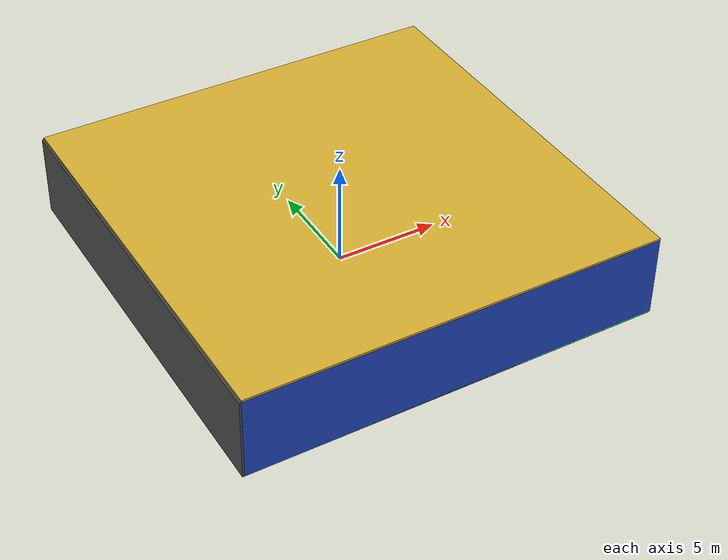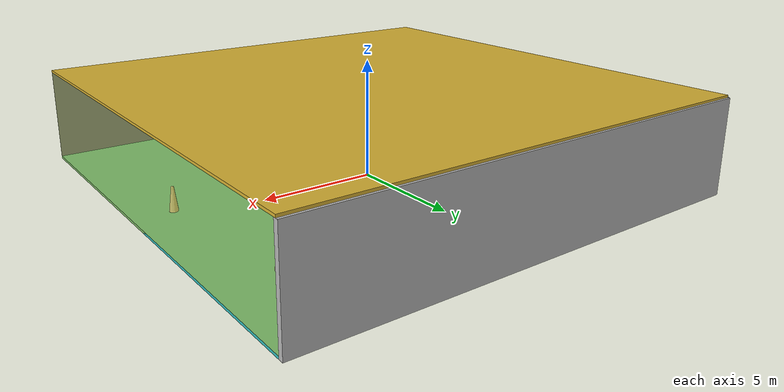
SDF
<sdf version="1.4">
 <world name="default">
  <physics type="ode">
   <max_step_size>0.001</max_step_size>
   <real_time_factor>1</real_time_factor>
   <real_time_update_rate>1000</real_time_update_rate>
   <gravity>0 0 -9.8</gravity>
  </physics>
  <scene><ambient>0.4 0.4 0.4 1</ambient><background>0.7 0.7 0.7 1</background><shadows>1</shadows></scene>
  <model name="Surrounding">
   <static>1</static>
   <link name="Ceiling">
    <collision name="Ceiling_Collision"><geometry><box><size>20 20 0.1</size></box></geometry></collision>
    <visual name="Ceiling_Visual">
     <geometry><box><size>20 20 0.1</size></box></geometry>
     <material>
      <script><uri>file://media/materials/scripts/gazebo.material</uri><name>Gazebo/Gold</name></script>
     </material>
    </visual>
    <pose>0 0 4.05 0 0 0</pose>
   </link>
   <link name="Wall_South">
    <collision name="Wall_South_Collision">
     <geometry><box><size>20 0 4</size></box></geometry>
     <pose>0 0 2 0 -0 0</pose>
    </collision>
    <visual name="Wall_South_Visual">
     <pose>0 0 2 0 -0 0</pose>
     <geometry><box><size>20 0 4</size></box></geometry>
     <material>
      <script><uri>file://media/materials/scripts/gazebo.material</uri><name>Gazebo/BlueLaser</name></script>
     </material>
    </visual>
    <velocity_decay><linear>0</linear><angular>0</angular></velocity_decay>
    <pose>0 -10 0 0 -0 0</pose>
   </link>
   <link name="Wall_East">
    <collision name="Wall_21_Collision">
     <geometry><box><size>20 0 4</size></box></geometry>
     <pose>0 0 2 0 -0 0</pose>
    </collision>
    <visual name="Wall_21_Visual">
     <pose>0 0 2 0 -0 0</pose>
     <geometry><box><size>20 0 4</size></box></geometry>
     <material>
      <script>
       <uri>file://media/materials/scripts/gazebo.material</uri>
       <name>Gazebo/YellowTransparent</name>
      </script>
     </material>
    </visual>
    <velocity_decay><linear>0</linear><angular>0</angular></velocity_decay>
    <pose>10 0 0 0 -0 1.5708</pose>
   </link>
   <link name="Wall_North">
    <collision name="Wall_22_Collision">
     <geometry><box><size>20 0.2 4</size></box></geometry>
     <pose>0 0 2 0 -0 0</pose>
    </collision>
    <visual name="Wall_22_Visual">
     <pose>0 0 2 0 -0 0</pose>
     <geometry><box><size>20 0.2 4</size></box></geometry>
     <material>
      <script><uri>file://media/materials/scripts/gazebo.material</uri><name>Gazebo/LightOff</name></script>
     </material>
    </visual>
    <velocity_decay><linear>0</linear><angular>0</angular></velocity_decay>
    <pose>0 10 0 0 -0 0</pose>
   </link>
   <link name="Wall_West">
    <collision name="Wall_23_Collision">
     <geometry><box><size>20 0.2 4</size></box></geometry>
     <pose>0 0 2 0 -0 0</pose>
    </collision>
    <visual name="Wall_23_Visual">
     <pose>0 0 2 0 -0 0</pose>
     <geometry><box><size>20 0.2 4</size></box></geometry>
     <material>
      <script><uri>file://media/materials/scripts/gazebo.material</uri><name>Gazebo/Road</name></script>
     </material>
    </visual>
    <velocity_decay><linear>0</linear><angular>0</angular></velocity_decay>
    <pose>-10 0 0 0 0 -1.5708</pose>
   </link>
   <link name="Ground_link">
    <collision name="collision">
     <pose>0 0 .05 0 -0 0</pose>
     <geometry><box><size>20 20 0.1</size></box></geometry>
    </collision>
    <visual name="visual">
     <pose>0 0 .05 0 -0 0</pose>
     <geometry><box><size>20 20 0.1</size></box></geometry>
     <material>
      <script><uri>file://media/materials/scripts/gazebo.material</uri><name>Gazebo/TurquoiseGlow</name></script>
     </material>
    </visual>
   </link>
   <static>1</static>
  </model>
  <spherical_coordinates>
   <surface_model>EARTH_WGS84</surface_model>
   <latitude_deg>0</latitude_deg>
   <longitude_deg>0</longitude_deg>
   <elevation>0</elevation>
   <heading_deg>0</heading_deg>
  </spherical_coordinates>
  <light name="lightball_0" type="diffuse">
   <diffuse>0.8 0.8 0.8 1</diffuse>
   <specular>0.2 0.2 0.2 1</specular>
   <attenuation>
    <range>100</range>
    <constant>0.7</constant>
    <linear>0.01</linear>
    <quadratic>0.001</quadratic>
   </attenuation>
   <direction>-0.5 0.1 -0.9</direction>
   <pose>6.38736287378 -1.17746633285 3.84074478435 0 0 0</pose>
  </light>
  <light name="lightball_1" type="diffuse">
   <diffuse>0.8 0.8 0.8 1</diffuse>
   <specular>0.2 0.2 0.2 1</specular>
   <attenuation>
    <range>100</range>
    <constant>0.7</constant>
    <linear>0.01</linear>
    <quadratic>0.001</quadratic>
   </attenuation>
   <direction>-0.5 0.1 -0.9</direction>
   <pose>5.56849657061 1.53515869731 3.34542570841 0 0 0</pose>
  </light>
  <light name="lightball_2" type="diffuse">
   <diffuse>0.8 0.8 0.8 1</diffuse>
   <specular>0.2 0.2 0.2 1</specular>
   <attenuation>
    <range>100</range>
    <constant>0.7</constant>
    <linear>0.01</linear>
    <quadratic>0.001</quadratic>
   </attenuation>
   <direction>-0.5 0.1 -0.9</direction>
   <pose>0.149019757655 4.24176558926 2.42449664058 0 0 0</pose>
  </light>
  <light name="lightball_3" type="diffuse">
   <diffuse>0.8 0.8 0.8 1</diffuse>
   <specular>0.2 0.2 0.2 1</specular>
   <attenuation>
    <range>100</range>
    <constant>0.7</constant>
    <linear>0.01</linear>
    <quadratic>0.001</quadratic>
   </attenuation>
   <direction>-0.5 0.1 -0.9</direction>
   <pose>7.5152614301 -8.48920346864 3.65847857645 0 0 0</pose>
  </light>
  <light name="lightball_4" type="diffuse">
   <diffuse>0.8 0.8 0.8 1</diffuse>
   <specular>0.2 0.2 0.2 1</specular>
   <attenuation>
    <range>100</range>
    <constant>0.7</constant>
    <linear>0.01</linear>
    <quadratic>0.001</quadratic>
   </attenuation>
   <direction>-0.5 0.1 -0.9</direction>
   <pose>3.5558050939 0.387850839575 2.21663950629 0 0 0</pose>
  </light>
  <light name="lightball_5" type="diffuse">
   <diffuse>0.8 0.8 0.8 1</diffuse>
   <specular>0.2 0.2 0.2 1</specular>
   <attenuation>
    <range>100</range>
    <constant>0.7</constant>
    <linear>0.01</linear>
    <quadratic>0.001</quadratic>
   </attenuation>
   <direction>-0.5 0.1 -0.9</direction>
   <pose>-5.8184874484 5.48474712003 0.653533128733 0 0 0</pose>
  </light>
  <light name="lightball_6" type="diffuse">
   <diffuse>0.8 0.8 0.8 1</diffuse>
   <specular>0.2 0.2 0.2 1</specular>
   <attenuation>
    <range>100</range>
    <constant>0.7</constant>
    <linear>0.01</linear>
    <quadratic>0.001</quadratic>
   </attenuation>
   <direction>-0.5 0.1 -0.9</direction>
   <pose>-2.40078208713 -4.26375678912 3.68128574735 0 0 0</pose>
  </light>
  <light name="lightball_7" type="diffuse">
   <diffuse>0.8 0.8 0.8 1</diffuse>
   <specular>0.2 0.2 0.2 1</specular>
   <attenuation>
    <range>100</range>
    <constant>0.7</constant>
    <linear>0.01</linear>
    <quadratic>0.001</quadratic>
   </attenuation>
   <direction>-0.5 0.1 -0.9</direction>
   <pose>-9.80459746736 6.61190680285 2.75724012194 0 0 0</pose>
  </light>
  <light name="lightball_8" type="diffuse">
   <diffuse>0.8 0.8 0.8 1</diffuse>
   <specular>0.2 0.2 0.2 1</specular>
   <attenuation>
    <range>100</range>
    <constant>0.7</constant>
    <linear>0.01</linear>
    <quadratic>0.001</quadratic>
   </attenuation>
   <direction>-0.5 0.1 -0.9</direction>
   <pose>-9.67988411685 -5.3013292538 2.57815034785 0 0 0</pose>
  </light>
  <light name="lightball_9" type="diffuse">
   <diffuse>0.8 0.8 0.8 1</diffuse>
   <specular>0.2 0.2 0.2 1</specular>
   <attenuation>
    <range>100</range>
    <constant>0.7</constant>
    <linear>0.01</linear>
    <quadratic>0.001</quadratic>
   </attenuation>
   <direction>-0.5 0.1 -0.9</direction>
   <pose>-7.53481010966 -2.28641142955 2.99115779404 0 0 0</pose>
  </light>
  <light name="lightball_10" type="diffuse">
   <diffuse>0.8 0.8 0.8 1</diffuse>
   <specular>0.2 0.2 0.2 1</specular>
   <attenuation>
    <range>100</range>
    <constant>0.7</constant>
    <linear>0.01</linear>
    <quadratic>0.001</quadratic>
   </attenuation>
   <direction>-0.5 0.1 -0.9</direction>
   <pose>2.1312633727 9.41670394928 0.989090497599 0 0 0</pose>
  </light>
  <light name="lightball_11" type="diffuse">
   <diffuse>0.8 0.8 0.8 1</diffuse>
   <specular>0.2 0.2 0.2 1</specular>
   <attenuation>
    <range>100</range>
    <constant>0.7</constant>
    <linear>0.01</linear>
    <quadratic>0.001</quadratic>
   </attenuation>
   <direction>-0.5 0.1 -0.9</direction>
   <pose>-3.85028042807 -0.85584378068 3.52529504952 0 0 0</pose>
  </light>
  <light name="lightball_12" type="diffuse">
   <diffuse>0.8 0.8 0.8 1</diffuse>
   <specular>0.2 0.2 0.2 1</specular>
   <attenuation>
    <range>100</range>
    <constant>0.7</constant>
    <linear>0.01</linear>
    <quadratic>0.001</quadratic>
   </attenuation>
   <direction>-0.5 0.1 -0.9</direction>
   <pose>-7.52861290215 2.35700563168 2.08789870491 0 0 0</pose>
  </light>
  <include><uri>model://table</uri><pose>-7.80666189021 -4.94066618363 0 0 0 1.11509627881</pose></include>
  <include>
   <uri>model://construction_cone</uri>
   <pose>8.38482193668 -0.868794562288 0 0 0 0.328835017539</pose>
  </include>
  <include>
   <uri>model://construction_cone</uri>
   <pose>7.55061365772 5.68385638466 0 0 0 0.747979534127</pose>
  </include>
  <include><uri>model://cabinet</uri><pose>7.50029895151 7.43291259491 0 0 0 2.7539764195</pose></include>
 </world>
</sdf>

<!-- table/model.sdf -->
<sdf version="1.5">
  <model name="table">
    <static>true</static>
    <link name="link">
      <collision name="surface">
        <pose>0 0 1.0 0 0 0</pose>
        <geometry>
          <box>
            <size>1.5 0.8 0.03</size>
          </box>
        </geometry>
        <surface>
          <friction>
            <ode>
              <mu>0.6</mu>
              <mu2>0.6</mu2>
            </ode>
          </friction>
        </surface>
      </collision>
      <visual name="visual1">
        <pose>0 0 1.0 0 0 0</pose>
        <geometry>
          <box>
            <size>1.5 0.8 0.03</size>
          </box>
        </geometry>
        <material>
          <script>
            <uri>model://media/materials/scripts/gazebo.material</uri>
            <name>Gazebo/Wood</name>
          </script>
        </material>
      </visual>
      <collision name="front_left_leg">
        <pose>0.68 0.38 0.5 0 0 0</pose>
        <geometry>
          <cylinder>
            <radius>0.02</radius>
            <length>1.0</length>
          </cylinder>
        </geometry>
      </collision>
      <visual name="front_left_leg">
        <pose>0.68 0.38 0.5 0 0 0</pose>
        <geometry>
          <cylinder>
            <radius>0.02</radius>
            <length>1.0</length>
          </cylinder>
        </geometry>
        <material>
          <script>
            <uri>model://media/materials/scripts/gazebo.material</uri>
            <name>Gazebo/Grey</name>
          </script>
        </material>
      </visual>
      <collision name="front_right_leg">
        <pose>0.68 -0.38 0.5 0 0 0</pose>
        <geometry>
          <cylinder>
            <radius>0.02</radius>
            <length>1.0</length>
          </cylinder>
        </geometry>
      </collision>
      <visual name="front_right_leg">
        <pose>0.68 -0.38 0.5 0 0 0</pose>
        <geometry>
          <cylinder>
            <radius>0.02</radius>
            <length>1.0</length>
          </cylinder>
        </geometry>
        <material>
          <script>
            <uri>model://media/materials/scripts/gazebo.material</uri>
            <name>Gazebo/Grey</name>
          </script>
        </material>
      </visual>
      <collision name="back_right_leg">
        <pose>-0.68 -0.38 0.5 0 0 0</pose>
        <geometry>
          <cylinder>
            <radius>0.02</radius>
            <length>1.0</length>
          </cylinder>
        </geometry>
      </collision>
      <visual name="back_right_leg">
        <pose>-0.68 -0.38 0.5 0 0 0</pose>
        <geometry>
          <cylinder>
            <radius>0.02</radius>
            <length>1.0</length>
          </cylinder>
        </geometry>
        <material>
          <script>
            <uri>model://media/materials/scripts/gazebo.material</uri>
            <name>Gazebo/Grey</name>
          </script>
        </material>
      </visual>
      <collision name="back_left_leg">
        <pose>-0.68 0.38 0.5 0 0 0</pose>
        <geometry>
          <cylinder>
            <radius>0.02</radius>
            <length>1.0</length>
          </cylinder>
        </geometry>
      </collision>
      <visual name="back_left_leg">
        <pose>-0.68 0.38 0.5 0 0 0</pose>
        <geometry>
          <cylinder>
            <radius>0.02</radius>
            <length>1.0</length>
          </cylinder>
        </geometry>
        <material>
          <script>
            <uri>model://media/materials/scripts/gazebo.material</uri>
            <name>Gazebo/Grey</name>
          </script>
        </material>
      </visual>
    </link>
  </model>
</sdf>

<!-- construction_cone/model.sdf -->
<sdf version="1.5">
  <model name="Construction Cone">
    <link name="link">
      <collision name="collision">
        <geometry>
          <mesh>
            <scale>10 10 10</scale>
            <uri>file://isr-testbed/construction_cone/meshes/construction_cone.dae</uri>
          </mesh>
        </geometry>
      </collision>
      <visual name="visual">
        <geometry>
          <mesh>
            <scale>10 10 10</scale>
            <uri>file://isr-testbed/construction_cone/meshes/construction_cone.dae</uri>
          </mesh>
        </geometry>
      </visual>
    </link>
  </model>
</sdf>

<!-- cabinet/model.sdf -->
<sdf version="1.5">
  <model name="cabinet">
    <static>true</static>
    <link name="cabinet_bottom_plate">
      <inertial>
        <pose>0 0 -1 0 0 0</pose>
        <inertia>
          <ixx>2.050000</ixx>
          <ixy>0</ixy>
          <ixz>0</ixz>
          <iyy>2.050000</iyy>
          <iyz>0</iyz>
          <izz>2.050000</izz>
        </inertia>
        <mass>25.000000</mass>
      </inertial>
      <collision name="cabinet_bottom_plate_geom">
        <pose>0 0 0.010000 0 0 0</pose>
        <geometry>
          <box>
            <size>0.450000 0.450000 0.020000</size>
          </box>
        </geometry>
      </collision>
      <visual name="cabinet_bottom_plate_geom_visual">
        <pose>0 0 0.010000 0 0 0</pose>
        <geometry>
          <box>
            <size>0.450000 0.450000 0.020000</size>
          </box>
        </geometry>
        <material>
          <script>
            <uri>model://media/materials/scripts/gazebo.material</uri>
            <name>Gazebo/Wood</name>
          </script>
        </material>
      </visual>
      <collision name="cabinet_bottom_plate_geom_cabinet_back_plate">
        <pose>0.235000 0 0.510000 0 0 0</pose>
        <geometry>
          <box>
            <size>0.020000 0.450000 1.020000</size>
          </box>
        </geometry>
      </collision>
      <visual name="cabinet_bottom_plate_geom_cabinet_back_plate_visual">
        <pose>0.235000 0 0.510000 0 0 0</pose>
        <geometry>
          <box>
            <size>0.020000 0.450000 1.020000</size>
          </box>
        </geometry>
        <material>
          <script>
            <uri>model://media/materials/scripts/gazebo.material</uri>
            <name>Gazebo/Wood</name>
          </script>
        </material>
      </visual>
      <collision name="cabinet_bottom_plate_geom_cabinet_left_plate">
        <pose>0 0.235000 0.510000 0 0 0</pose>
        <geometry>
          <box>
            <size>0.450000 0.020000 1.020000</size>
          </box>
        </geometry>
      </collision>
      <visual name="cabinet_bottom_plate_geom_cabinet_left_plate_visual">
        <pose>0 0.235000 0.510000 0 0 0</pose>
        <geometry>
          <box>
            <size>0.450000 0.020000 1.020000</size>
          </box>
        </geometry>
        <material>
          <script>
            <uri>model://media/materials/scripts/gazebo.material</uri>
            <name>Gazebo/Wood</name>
          </script>
        </material>
      </visual>
      <collision name="cabinet_bottom_plate_geom_cabinet_middle_plate">
        <pose>0 0 0.510000 0 0 0</pose>
        <geometry>
          <box>
            <size>0.450000 0.450000 0.020000</size>
          </box>
        </geometry>
      </collision>
      <visual name="cabinet_bottom_plate_geom_cabinet_middle_plate_visual">
        <pose>0 0 0.510000 0 0 0</pose>
        <geometry>
          <box>
            <size>0.450000 0.450000 0.020000</size>
          </box>
        </geometry>
        <material>
          <script>
            <uri>model://media/materials/scripts/gazebo.material</uri>
            <name>Gazebo/Wood</name>
          </script>
        </material>
      </visual>
      <collision name="cabinet_bottom_plate_geom_cabinet_right_plate">
        <pose>0 -0.235000 0.510000 0 0 0</pose>
        <geometry>
          <box>
            <size>0.450000 0.020000 1.020000</size>
          </box>
        </geometry>
      </collision>
      <visual name="cabinet_bottom_plate_geom_cabinet_right_plate_visual">
        <pose>0 -0.235000 0.510000 0 0 0</pose>
        <geometry>
          <box>
            <size>0.450000 0.020000 1.020000</size>
          </box>
        </geometry>
        <material>
          <script>
            <uri>model://media/materials/scripts/gazebo.material</uri>
            <name>Gazebo/Wood</name>
          </script>
        </material>
      </visual>
      <collision name="cabinet_bottom_plate_geom_cabinet_top_plate">
        <pose>0 0 1.010000 0 0 0</pose>
        <geometry>
          <box>
            <size>0.450000 0.450000 0.020000</size>
          </box>
        </geometry>
      </collision>
      <visual name="cabinet_bottom_plate_geom_cabinet_top_plate_visual">
        <pose>0 0 1.010000 0 0 0</pose>
        <geometry>
          <box>
            <size>0.450000 0.450000 0.020000</size>
          </box>
        </geometry>
        <material>
          <script>
            <uri>model://media/materials/scripts/gazebo.material</uri>
            <name>Gazebo/Wood</name>
          </script>
        </material>
      </visual>
    </link>
  </model>
</sdf>
